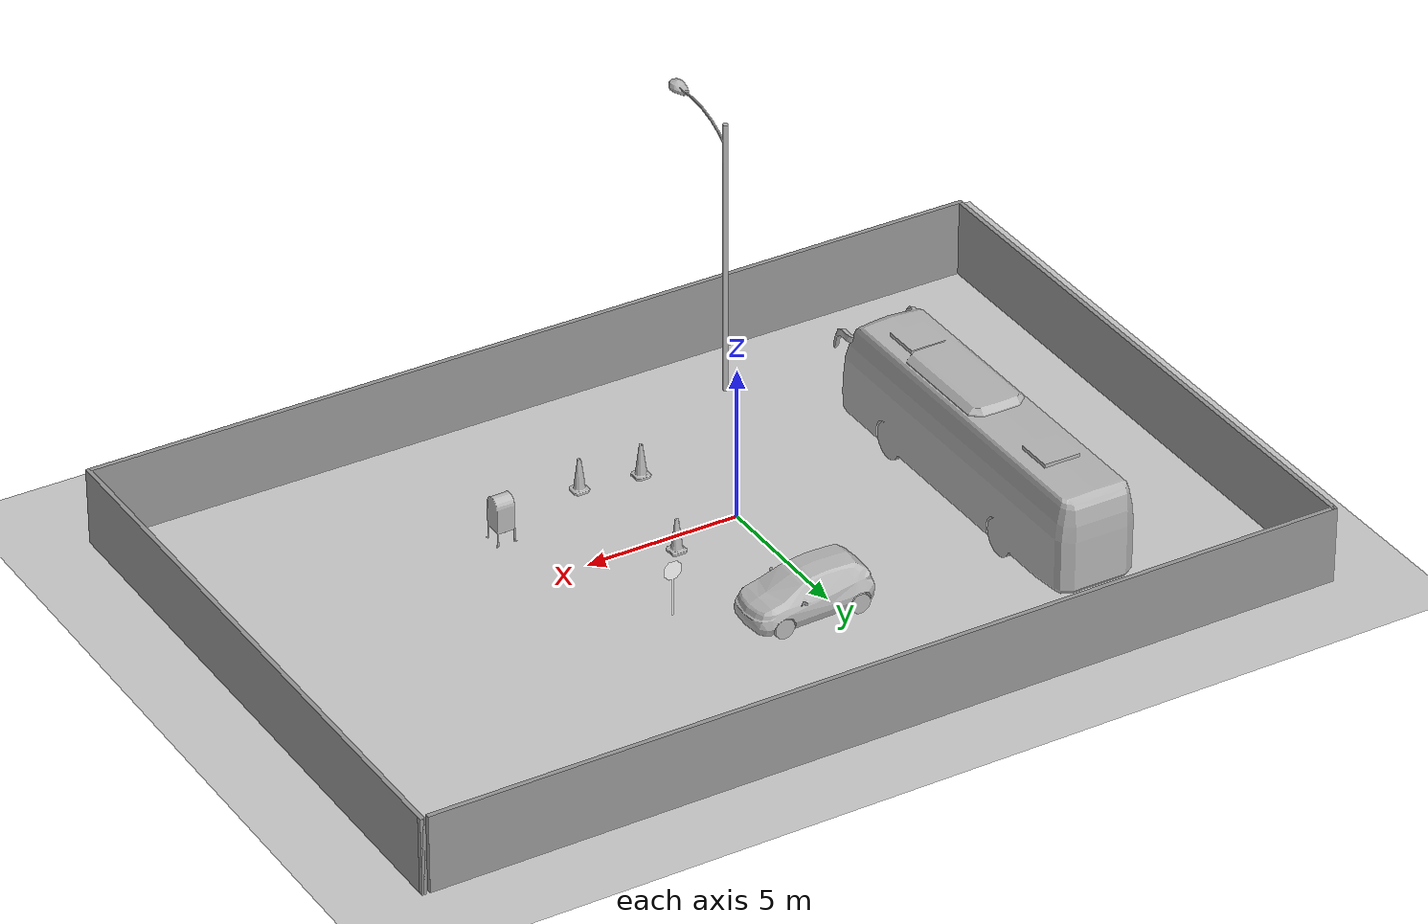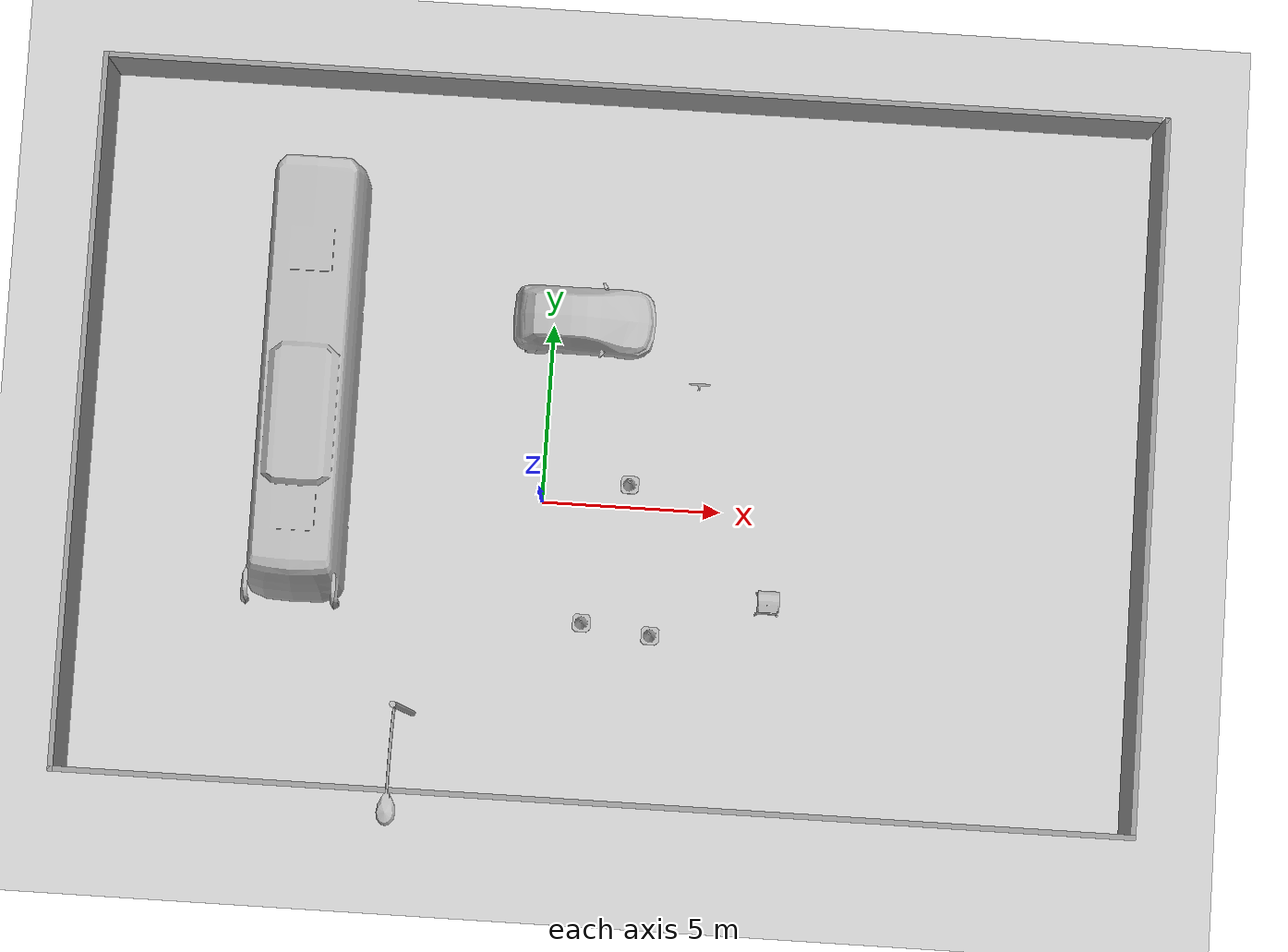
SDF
<sdf version="1.7">
 <world name="default">
  <light name="sun" type="directional">
   <pose>0 0 10 0 -0 0</pose>
   <diffuse>0.8 0.8 0.8 1</diffuse>
   <specular>0.2 0.2 0.2 1</specular>
   <attenuation>
    <range>1000</range>
    <constant>0.9</constant>
    <linear>0.01</linear>
    <quadratic>0.001</quadratic>
   </attenuation>
   <direction>-0.5 0.1 -0.9</direction>
   <spot><inner_angle>0</inner_angle><outer_angle>0</outer_angle><falloff>0</falloff></spot>
  </light>
  <model name="ground_plane">
   <static>1</static>
   <link name="link">
    <collision name="collision">
     <geometry><plane><normal>0 0 1</normal><size>100 100</size></plane></geometry>
     <surface>
      <contact><collide_bitmask>65535</collide_bitmask></contact>
      <friction><ode><mu>100</mu><mu2>50</mu2></ode></friction>
     </surface>
    </collision>
    <visual name="visual">
     <cast_shadows>0</cast_shadows>
     <geometry><plane><normal>0 0 1</normal><size>100 100</size></plane></geometry>
     <material>
      <script><uri>file://media/materials/scripts/gazebo.material</uri><name>Gazebo/Grey</name></script>
     </material>
    </visual>
   </link>
  </model>
  <gravity>0 0 -9.8</gravity>
  <magnetic_field>6e-06 2.3e-05 -4.2e-05</magnetic_field>
  <atmosphere type="adiabatic"/>
  <physics type="ode">
   <max_step_size>0.001</max_step_size>
   <real_time_factor>1</real_time_factor>
   <real_time_update_rate>1000</real_time_update_rate>
  </physics>
  <scene><ambient>0.4 0.4 0.4 1</ambient><background>0.7 0.7 0.7 1</background><shadows>1</shadows></scene>
  <spherical_coordinates>
   <surface_model>EARTH_WGS84</surface_model>
   <latitude_deg>0</latitude_deg>
   <longitude_deg>0</longitude_deg>
   <elevation>0</elevation>
   <heading_deg>0</heading_deg>
  </spherical_coordinates>
  <model name="bus">
   <static>1</static>
   <link name="link">
    <collision name="collision">
     <geometry><mesh><scale>0.01 0.01 0.01</scale><uri>model://bus/meshes/bus.obj</uri></mesh></geometry>
    </collision>
    <visual name="visual">
     <geometry><mesh><scale>0.01 0.01 0.01</scale><uri>model://bus/meshes/bus.obj</uri></mesh></geometry>
    </visual>
   </link>
   <pose>-6.68808 2.7784 0 0 -0 0</pose>
  </model>
  <model name="hatchback_blue">
   <static>1</static>
   <link name="link">
    <collision name="collision">
     <pose>0 0 0 0 -0 1.5708</pose>
     <geometry>
      <mesh><scale>0.0254 0.0254 0.0254</scale><uri>model://hatchback_blue/meshes/hatchback.obj</uri></mesh>
     </geometry>
    </collision>
    <visual name="visual">
     <pose>0 0 0 0 -0 1.5708</pose>
     <geometry>
      <mesh><scale>0.0254 0.0254 0.0254</scale><uri>model://hatchback_blue/meshes/hatchback.obj</uri></mesh>
     </geometry>
    </visual>
   </link>
   <pose>0.506759 5.1334 0 0 -0 0</pose>
  </model>
  <model name="Stop Sign">
   <static>1</static>
   <link name="link">
    <collision name="collision">
     <geometry><mesh><uri>model://stop_sign/meshes/stop_sign.dae</uri></mesh></geometry>
    </collision>
    <visual name="visual">
     <geometry><mesh><uri>model://stop_sign/meshes/stop_sign.dae</uri></mesh></geometry>
     <material>
      <script>
       <uri>model://stop_sign/materials/scripts</uri>
       <uri>model://stop_sign/materials/textures</uri>
       <name>StopSign/Diffuse</name>
      </script>
     </material>
    </visual>
   </link>
   <pose>4.18543 3.43927 0 0 -0 0</pose>
  </model>
  <model name="Lamp Post">
   <static>1</static>
   <link name="link">
    <collision name="collision">
     <geometry><mesh><uri>model://lamp_post/meshes/lamp_post.dae</uri><scale>3 3 3</scale></mesh></geometry>
    </collision>
    <visual name="visual">
     <geometry><mesh><uri>model://lamp_post/meshes/lamp_post.dae</uri><scale>3 3 3</scale></mesh></geometry>
    </visual>
   </link>
   <pose>-3.25809 -6.1719 0 0 -0 0</pose>
  </model>
  <model name="walls">
   <pose>1.90429 1.58948 0 0 -0 0</pose>
   <link name="Wall_10">
    <collision name="Wall_10_Collision">
     <geometry><box><size>0.15 0.15 2.5</size></box></geometry>
     <pose>0 0 1.25 0 -0 0</pose>
    </collision>
    <visual name="Wall_10_Visual">
     <pose>0 0 1.25 0 -0 0</pose>
     <geometry><box><size>0.15 0.15 2.5</size></box></geometry>
     <material>
      <script><uri>file://media/materials/scripts/gazebo.material</uri><name>Gazebo/Grey</name></script>
      <ambient>1 1 1 1</ambient>
     </material>
     <meta><layer>0</layer></meta>
    </visual>
    <pose>14.8 9.925 0 0 -0 0</pose>
   </link>
   <link name="Wall_3">
    <collision name="Wall_3_Collision">
     <geometry><box><size>29.5 0.15 2.5</size></box></geometry>
     <pose>0 0 1.25 0 -0 0</pose>
    </collision>
    <visual name="Wall_3_Visual">
     <pose>0 0 1.25 0 -0 0</pose>
     <geometry><box><size>29.5 0.15 2.5</size></box></geometry>
     <material>
      <script><uri>file://media/materials/scripts/gazebo.material</uri><name>Gazebo/Grey</name></script>
      <ambient>1 1 1 1</ambient>
     </material>
     <meta><layer>0</layer></meta>
    </visual>
    <pose>-0.125 9.925 0 0 -0 3.14159</pose>
   </link>
   <link name="Wall_6">
    <collision name="Wall_6_Collision">
     <geometry><box><size>20 0.15 2.5</size></box></geometry>
     <pose>0 0 1.25 0 -0 0</pose>
    </collision>
    <visual name="Wall_6_Visual">
     <pose>0 0 1.25 0 -0 0</pose>
     <geometry><box><size>20 0.15 2.5</size></box></geometry>
     <material>
      <script><uri>file://media/materials/scripts/gazebo.material</uri><name>Gazebo/Grey</name></script>
      <ambient>1 1 1 1</ambient>
     </material>
     <meta><layer>0</layer></meta>
    </visual>
    <pose>-14.8 0 0 0 -0 -1.5708</pose>
   </link>
   <link name="Wall_7">
    <collision name="Wall_7_Collision">
     <geometry><box><size>29.75 0.15 2.5</size></box></geometry>
     <pose>0 0 1.25 0 -0 0</pose>
    </collision>
    <visual name="Wall_7_Visual">
     <pose>0 0 1.25 0 -0 0</pose>
     <geometry><box><size>29.75 0.15 2.5</size></box></geometry>
     <material>
      <script><uri>file://media/materials/scripts/gazebo.material</uri><name>Gazebo/Grey</name></script>
      <ambient>1 1 1 1</ambient>
     </material>
     <meta><layer>0</layer></meta>
    </visual>
    <pose>0 -9.925 0 0 -0 0</pose>
   </link>
   <link name="Wall_8">
    <collision name="Wall_8_Collision">
     <geometry><box><size>20 0.15 2.5</size></box></geometry>
     <pose>0 0 1.25 0 -0 0</pose>
    </collision>
    <visual name="Wall_8_Visual">
     <pose>0 0 1.25 0 -0 0</pose>
     <geometry><box><size>20 0.15 2.5</size></box></geometry>
     <material>
      <script><uri>file://media/materials/scripts/gazebo.material</uri><name>Gazebo/Grey</name></script>
      <ambient>1 1 1 1</ambient>
     </material>
     <meta><layer>0</layer></meta>
    </visual>
    <pose>14.8 0 0 0 -0 1.5708</pose>
   </link>
   <link name="Wall_9">
    <collision name="Wall_9_Collision">
     <geometry><box><size>0.15 0.15 2.5</size></box></geometry>
     <pose>0 0 1.25 0 -0 0</pose>
    </collision>
    <visual name="Wall_9_Visual">
     <pose>0 0 1.25 0 -0 0</pose>
     <geometry><box><size>0.15 0.15 2.5</size></box></geometry>
     <material>
      <script><uri>file://media/materials/scripts/gazebo.material</uri><name>Gazebo/Grey</name></script>
      <ambient>1 1 1 1</ambient>
     </material>
     <meta><layer>0</layer></meta>
    </visual>
    <pose>14.8 9.925 0 0 -0 0</pose>
   </link>
   <static>1</static>
  </model>
  <model name="Construction Cone">
   <link name="link">
    <collision name="collision">
     <geometry>
      <mesh><scale>10 10 10</scale><uri>model://construction_cone/meshes/construction_cone.dae</uri></mesh>
     </geometry>
    </collision>
    <visual name="visual">
     <geometry>
      <mesh><scale>10 10 10</scale><uri>model://construction_cone/meshes/construction_cone.dae</uri></mesh>
     </geometry>
    </visual>
    <inertial>
     <inertia><ixx>1</ixx><ixy>0</ixy><ixz>0</ixz><iyy>1</iyy><iyz>0</iyz><izz>1</izz></inertia>
     <mass>1</mass>
    </inertial>
   </link>
   <pose>1.29601 -3.33282 -0 1e-06 -0 0</pose>
  </model>
  <model name="Construction Cone_0">
   <link name="link">
    <collision name="collision">
     <geometry>
      <mesh><scale>10 10 10</scale><uri>model://construction_cone/meshes/construction_cone.dae</uri></mesh>
     </geometry>
    </collision>
    <visual name="visual">
     <geometry>
      <mesh><scale>10 10 10</scale><uri>model://construction_cone/meshes/construction_cone.dae</uri></mesh>
     </geometry>
    </visual>
    <inertial>
     <inertia><ixx>1</ixx><ixy>0</ixy><ixz>0</ixz><iyy>1</iyy><iyz>0</iyz><izz>1</izz></inertia>
     <mass>1</mass>
    </inertial>
   </link>
   <pose>3.23923 -3.5713 -5e-06 5e-06 -1e-06 0</pose>
  </model>
  <model name="Construction Cone_1">
   <link name="link">
    <collision name="collision">
     <geometry>
      <mesh><scale>10 10 10</scale><uri>model://construction_cone/meshes/construction_cone.dae</uri></mesh>
     </geometry>
    </collision>
    <visual name="visual">
     <geometry>
      <mesh><scale>10 10 10</scale><uri>model://construction_cone/meshes/construction_cone.dae</uri></mesh>
     </geometry>
    </visual>
    <inertial>
     <inertia><ixx>1</ixx><ixy>0</ixy><ixz>0</ixz><iyy>1</iyy><iyz>0</iyz><izz>1</izz></inertia>
     <mass>1</mass>
    </inertial>
   </link>
   <pose>2.41231 0.638087 -0 0 -0 0</pose>
  </model>
  <model name="postbox">
   <static>1</static>
   <link name="link">
    <collision name="collision">
     <geometry><mesh><uri>model://postbox/meshes/postbox.dae</uri></mesh></geometry>
    </collision>
    <visual name="visual"><geometry><mesh><uri>model://postbox/meshes/postbox.dae</uri></mesh></geometry></visual>
   </link>
   <pose>6.45993 -2.48333 0 0 -0 0</pose>
  </model>
 </world>
</sdf>
